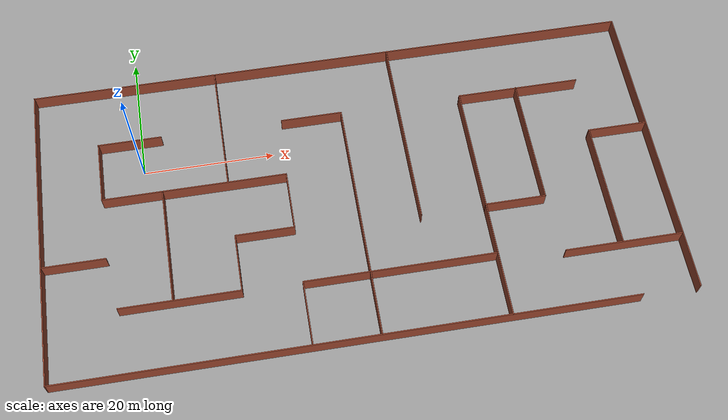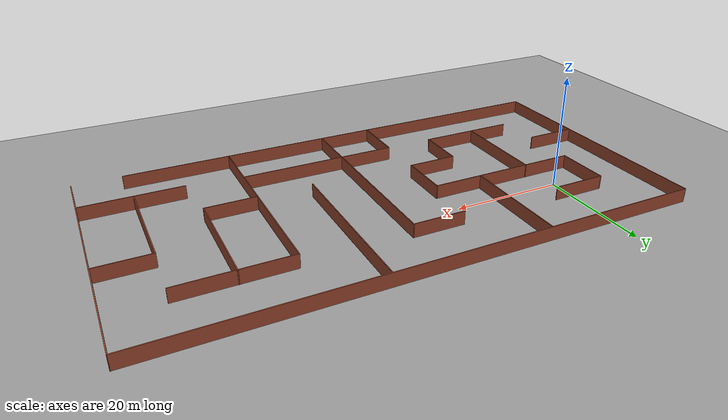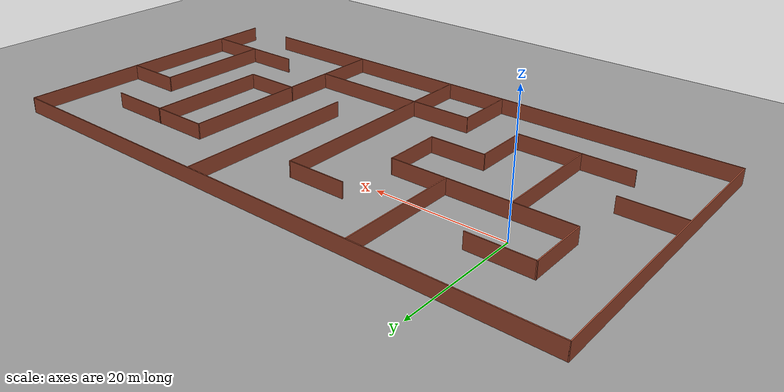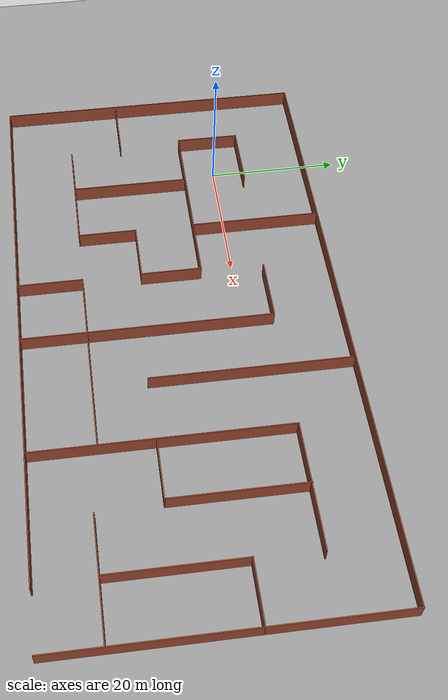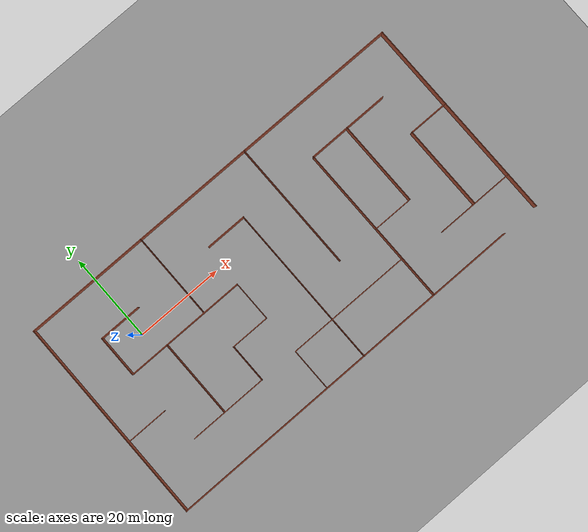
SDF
<sdf version="1.6">
 <world name="vrc_task_1">
  <light name="sun" type="directional">
   <cast_shadows>0</cast_shadows>
   <pose>0 0 100 0 -0 0</pose>
   <diffuse>0.8 0.8 0.8 1</diffuse>
   <specular>0.9 0.9 0.9 1</specular>
   <attenuation>
    <range>1000</range>
    <constant>0.9</constant>
    <linear>0.01</linear>
    <quadratic>0.001</quadratic>
   </attenuation>
   <direction>0 0 -1</direction>
  </light>
  <model name="floor_walls_1">
   <static>1</static>
   <link name="link">
    <collision name="collision">
     <geometry><plane><normal>0 0 1</normal><size>11.03 5.66</size></plane></geometry>
     <surface><friction><ode><mu>10000</mu><mu2>10000</mu2></ode></friction></surface>
    </collision>
    <visual name="visual">
     <cast_shadows>0</cast_shadows>
     <geometry><plane><normal>0 0 1</normal><size>1000 1000</size></plane></geometry>
     <material>
      <script><uri>file://media/materials/scripts/gazebo.material</uri><name>Gazebo/Grey</name></script>
     </material>
    </visual>
   </link>
  </model>
  <model name="EasyMaze">
   <pose>31 -9 0 0 -0 0</pose>
   <link name="Wall_0">
    <collision name="Wall_0_Collision">
     <geometry><box><size>93.7757 0.15 2.5</size></box></geometry>
     <pose>0 0 1.25 0 -0 0</pose>
    </collision>
    <visual name="Wall_0_Visual">
     <pose>0 0 1.25 0 -0 0</pose>
     <geometry><box><size>93.7757 0.15 2.5</size></box></geometry>
     <material>
      <script><uri>file://media/materials/scripts/gazebo.material</uri><name>Gazebo/Bricks</name></script>
      <ambient>1 1 1 1</ambient>
     </material>
    </visual>
    <pose>0.036664 23.8 0 0 -0 0</pose>
   </link>
   <link name="Wall_1">
    <collision name="Wall_1_Collision">
     <geometry><box><size>47.75 0.15 2.5</size></box></geometry>
     <pose>0 0 1.25 0 -0 0</pose>
    </collision>
    <visual name="Wall_1_Visual">
     <pose>0 0 1.25 0 -0 0</pose>
     <geometry><box><size>47.75 0.15 2.5</size></box></geometry>
     <material>
      <script><uri>file://media/materials/scripts/gazebo.material</uri><name>Gazebo/Bricks</name></script>
      <ambient>1 1 1 1</ambient>
     </material>
    </visual>
    <pose>46.8495 0 0 0 0 -1.5708</pose>
   </link>
   <link name="Wall_10">
    <collision name="Wall_10_Collision">
     <geometry><box><size>9.25 0.15 2.5</size></box></geometry>
     <pose>0 0 1.25 0 -0 0</pose>
    </collision>
    <visual name="Wall_10_Visual">
     <pose>0 0 1.25 0 -0 0</pose>
     <geometry><box><size>9.25 0.15 2.5</size></box></geometry>
     <material>
      <script><uri>file://media/materials/scripts/gazebo.material</uri><name>Gazebo/Bricks</name></script>
      <ambient>1 1 1 1</ambient>
     </material>
    </visual>
    <pose>-9.55406 -0.512055 0 0 0 -1.5708</pose>
   </link>
   <link name="Wall_11">
    <collision name="Wall_11_Collision">
     <geometry><box><size>9 0.15 2.5</size></box></geometry>
     <pose>0 0 1.25 0 -0 0</pose>
    </collision>
    <visual name="Wall_11_Visual">
     <pose>0 0 1.25 0 -0 0</pose>
     <geometry><box><size>9 0.15 2.5</size></box></geometry>
     <material>
      <script><uri>file://media/materials/scripts/gazebo.material</uri><name>Gazebo/Bricks</name></script>
      <ambient>1 1 1 1</ambient>
     </material>
    </visual>
    <pose>-13.9791 -5.06206 0 0 -0 3.14159</pose>
   </link>
   <link name="Wall_12">
    <collision name="Wall_12_Collision">
     <geometry><box><size>9 0.15 2.5</size></box></geometry>
     <pose>0 0 1.25 0 -0 0</pose>
    </collision>
    <visual name="Wall_12_Visual">
     <pose>0 0 1.25 0 -0 0</pose>
     <geometry><box><size>9 0.15 2.5</size></box></geometry>
     <material>
      <script><uri>file://media/materials/scripts/gazebo.material</uri><name>Gazebo/Bricks</name></script>
      <ambient>1 1 1 1</ambient>
     </material>
    </visual>
    <pose>-18.4041 -9.48706 0 0 0 -1.5708</pose>
   </link>
   <link name="Wall_13">
    <collision name="Wall_13_Collision">
     <geometry><box><size>18 0.15 2.5</size></box></geometry>
     <pose>0 0 1.25 0 -0 0</pose>
    </collision>
    <visual name="Wall_13_Visual">
     <pose>0 0 1.25 0 -0 0</pose>
     <geometry><box><size>18 0.15 2.5</size></box></geometry>
     <material>
      <script><uri>file://media/materials/scripts/gazebo.material</uri><name>Gazebo/Bricks</name></script>
      <ambient>1 1 1 1</ambient>
     </material>
    </visual>
    <pose>-27.3291 -13.9121 0 0 -0 3.14159</pose>
   </link>
   <link name="Wall_15">
    <collision name="Wall_15_Collision">
     <geometry><box><size>18 0.15 2.5</size></box></geometry>
     <pose>0 0 1.25 0 -0 0</pose>
    </collision>
    <visual name="Wall_15_Visual">
     <pose>0 0 1.25 0 -0 0</pose>
     <geometry><box><size>18 0.15 2.5</size></box></geometry>
     <material>
      <script><uri>file://media/materials/scripts/gazebo.material</uri><name>Gazebo/Bricks</name></script>
      <ambient>1 1 1 1</ambient>
     </material>
    </visual>
    <pose>-28.3578 -4.8854 0 0 0 -1.5708</pose>
   </link>
   <link name="Wall_17">
    <collision name="Wall_17_Collision">
     <geometry><box><size>9.5 0.15 2.5</size></box></geometry>
     <pose>0 0 1.25 0 -0 0</pose>
    </collision>
    <visual name="Wall_17_Visual">
     <pose>0 0 1.25 0 -0 0</pose>
     <geometry><box><size>9.5 0.15 2.5</size></box></geometry>
     <material>
      <script><uri>file://media/materials/scripts/gazebo.material</uri><name>Gazebo/Bricks</name></script>
      <ambient>1 1 1 1</ambient>
     </material>
    </visual>
    <pose>-42.0796 -5.74334 0 0 -0 0</pose>
   </link>
   <link name="Wall_19">
    <collision name="Wall_19_Collision">
     <geometry><box><size>9.75 0.15 2.5</size></box></geometry>
     <pose>0 0 1.25 0 -0 0</pose>
    </collision>
    <visual name="Wall_19_Visual">
     <pose>0 0 1.25 0 -0 0</pose>
     <geometry><box><size>9.75 0.15 2.5</size></box></geometry>
     <material>
      <script><uri>file://media/materials/scripts/gazebo.material</uri><name>Gazebo/Bricks</name></script>
      <ambient>1 1 1 1</ambient>
     </material>
    </visual>
    <pose>-9.55144 -18.8483 0 0 0 -1.5708</pose>
   </link>
   <link name="Wall_22">
    <collision name="Wall_22_Collision">
     <geometry><box><size>37.5 0.15 2.5</size></box></geometry>
     <pose>0 0 1.25 0 -0 0</pose>
    </collision>
    <visual name="Wall_22_Visual">
     <pose>0 0 1.25 0 -0 0</pose>
     <geometry><box><size>37.5 0.15 2.5</size></box></geometry>
     <material>
      <script><uri>file://media/materials/scripts/gazebo.material</uri><name>Gazebo/Bricks</name></script>
      <ambient>1 1 1 1</ambient>
     </material>
    </visual>
    <pose>0.352554 -5.08927 0 0 0 -1.5708</pose>
   </link>
   <link name="Wall_24">
    <collision name="Wall_24_Collision">
     <geometry><box><size>30 0.15 2.5</size></box></geometry>
     <pose>0 0 1.25 0 -0 0</pose>
    </collision>
    <visual name="Wall_24_Visual">
     <pose>0 0 1.25 0 -0 0</pose>
     <geometry><box><size>30 0.15 2.5</size></box></geometry>
     <material>
      <script><uri>file://media/materials/scripts/gazebo.material</uri><name>Gazebo/Bricks</name></script>
      <ambient>1 1 1 1</ambient>
     </material>
    </visual>
    <pose>9.35586 8.86223 0 0 0 -1.5708</pose>
   </link>
   <link name="Wall_26">
    <collision name="Wall_26_Collision">
     <geometry><box><size>28.75 0.15 2.5</size></box></geometry>
     <pose>0 0 1.25 0 -0 0</pose>
    </collision>
    <visual name="Wall_26_Visual">
     <pose>0 0 1.25 0 -0 0</pose>
     <geometry><box><size>28.75 0.15 2.5</size></box></geometry>
     <material>
      <script><uri>file://media/materials/scripts/gazebo.material</uri><name>Gazebo/Bricks</name></script>
      <ambient>1 1 1 1</ambient>
     </material>
    </visual>
    <pose>4.76053 -13.997 0 0 -0 0</pose>
   </link>
   <link name="Wall_28">
    <collision name="Wall_28_Collision">
     <geometry><box><size>19 0.15 2.5</size></box></geometry>
     <pose>0 0 1.25 0 -0 0</pose>
    </collision>
    <visual name="Wall_28_Visual">
     <pose>0 0 1.25 0 -0 0</pose>
     <geometry><box><size>19 0.15 2.5</size></box></geometry>
     <material>
      <script><uri>file://media/materials/scripts/gazebo.material</uri><name>Gazebo/Bricks</name></script>
      <ambient>1 1 1 1</ambient>
     </material>
    </visual>
    <pose>28.6447 13.603 0 0 -0 0</pose>
   </link>
   <link name="Wall_30">
    <collision name="Wall_30_Collision">
     <geometry><box><size>19.75 0.15 2.5</size></box></geometry>
     <pose>0 0 1.25 0 -0 0</pose>
    </collision>
    <visual name="Wall_30_Visual">
     <pose>0 0 1.25 0 -0 0</pose>
     <geometry><box><size>19.75 0.15 2.5</size></box></geometry>
     <material>
      <script><uri>file://media/materials/scripts/gazebo.material</uri><name>Gazebo/Bricks</name></script>
      <ambient>1 1 1 1</ambient>
     </material>
    </visual>
    <pose>28.3187 3.86897 0 0 0 -1.5708</pose>
   </link>
   <link name="Wall_31">
    <collision name="Wall_31_Collision">
     <geometry><box><size>9.25 0.15 2.5</size></box></geometry>
     <pose>0 0 1.25 0 -0 0</pose>
    </collision>
    <visual name="Wall_31_Visual">
     <pose>0 0 1.25 0 -0 0</pose>
     <geometry><box><size>9.25 0.15 2.5</size></box></geometry>
     <material>
      <script><uri>file://media/materials/scripts/gazebo.material</uri><name>Gazebo/Bricks</name></script>
      <ambient>1 1 1 1</ambient>
     </material>
    </visual>
    <pose>23.7687 -5.93103 0 0 -0 3.14159</pose>
   </link>
   <link name="Wall_33">
    <collision name="Wall_33_Collision">
     <geometry><box><size>9.25 0.15 2.5</size></box></geometry>
     <pose>0 0 1.25 0 -0 0</pose>
    </collision>
    <visual name="Wall_33_Visual">
     <pose>0 0 1.25 0 -0 0</pose>
     <geometry><box><size>9.25 0.15 2.5</size></box></geometry>
     <material>
      <script><uri>file://media/materials/scripts/gazebo.material</uri><name>Gazebo/Bricks</name></script>
      <ambient>1 1 1 1</ambient>
     </material>
    </visual>
    <pose>42.3071 4.18752 0 0 -0 3.14159</pose>
   </link>
   <link name="Wall_34">
    <collision name="Wall_34_Collision">
     <geometry><box><size>19.5 0.15 2.5</size></box></geometry>
     <pose>0 0 1.25 0 -0 0</pose>
    </collision>
    <visual name="Wall_34_Visual">
     <pose>0 0 1.25 0 -0 0</pose>
     <geometry><box><size>19.5 0.15 2.5</size></box></geometry>
     <material>
      <script><uri>file://media/materials/scripts/gazebo.material</uri><name>Gazebo/Bricks</name></script>
      <ambient>1 1 1 1</ambient>
     </material>
    </visual>
    <pose>37.7571 -5.48748 0 0 0 -1.5708</pose>
   </link>
   <link name="Wall_37">
    <collision name="Wall_37_Collision">
     <geometry><box><size>17.75 0.15 2.5</size></box></geometry>
     <pose>0 0 1.25 0 -0 0</pose>
    </collision>
    <visual name="Wall_37_Visual">
     <pose>0 0 1.25 0 -0 0</pose>
     <geometry><box><size>17.75 0.15 2.5</size></box></geometry>
     <material>
      <script><uri>file://media/materials/scripts/gazebo.material</uri><name>Gazebo/Bricks</name></script>
      <ambient>1 1 1 1</ambient>
     </material>
    </visual>
    <pose>37.9678 -15.2323 0 0 -0 0</pose>
   </link>
   <link name="Wall_39">
    <collision name="Wall_39_Collision">
     <geometry><box><size>37.5 0.15 2.5</size></box></geometry>
     <pose>0 0 1.25 0 -0 0</pose>
    </collision>
    <visual name="Wall_39_Visual">
     <pose>0 0 1.25 0 -0 0</pose>
     <geometry><box><size>37.5 0.15 2.5</size></box></geometry>
     <material>
      <script><uri>file://media/materials/scripts/gazebo.material</uri><name>Gazebo/Bricks</name></script>
      <ambient>1 1 1 1</ambient>
     </material>
    </visual>
    <pose>19.2197 -5.07204 0 0 0 -1.5708</pose>
   </link>
   <link name="Wall_41">
    <collision name="Wall_41_Collision">
     <geometry><box><size>85.25 0.15 2.5</size></box></geometry>
     <pose>0 0 1.25 0 -0 0</pose>
    </collision>
    <visual name="Wall_41_Visual">
     <pose>0 0 1.25 0 -0 0</pose>
     <geometry><box><size>85.25 0.15 2.5</size></box></geometry>
     <material>
      <script><uri>file://media/materials/scripts/gazebo.material</uri><name>Gazebo/Bricks</name></script>
      <ambient>1 1 1 1</ambient>
     </material>
    </visual>
    <pose>-4.23942 -23.8 0 0 -0 0</pose>
   </link>
   <link name="Wall_43">
    <collision name="Wall_43_Collision">
     <geometry><box><size>47.75 0.15 2.5</size></box></geometry>
     <pose>0 0 1.25 0 -0 0</pose>
    </collision>
    <visual name="Wall_43_Visual">
     <pose>0 0 1.25 0 -0 0</pose>
     <geometry><box><size>47.75 0.15 2.5</size></box></geometry>
     <material>
      <script><uri>file://media/materials/scripts/gazebo.material</uri><name>Gazebo/Bricks</name></script>
      <ambient>1 1 1 1</ambient>
     </material>
    </visual>
    <pose>-46.8571 0 0 0 0 -1.5708</pose>
   </link>
   <link name="Wall_45">
    <collision name="Wall_45_Collision">
     <geometry><box><size>9.5 0.15 2.5</size></box></geometry>
     <pose>0 0 1.25 0 -0 0</pose>
    </collision>
    <visual name="Wall_45_Visual">
     <pose>0 0 1.25 0 -0 0</pose>
     <geometry><box><size>9.5 0.15 2.5</size></box></geometry>
     <material>
      <script><uri>file://media/materials/scripts/gazebo.material</uri><name>Gazebo/Bricks</name></script>
      <ambient>1 1 1 1</ambient>
     </material>
    </visual>
    <pose>-4.32245 13.5857 0 0 -0 0</pose>
   </link>
   <link name="Wall_5">
    <collision name="Wall_5_Collision">
     <geometry><box><size>19.75 0.15 2.5</size></box></geometry>
     <pose>0 0 1.25 0 -0 0</pose>
    </collision>
    <visual name="Wall_5_Visual">
     <pose>0 0 1.25 0 -0 0</pose>
     <geometry><box><size>19.75 0.15 2.5</size></box></geometry>
     <material>
      <script><uri>file://media/materials/scripts/gazebo.material</uri><name>Gazebo/Bricks</name></script>
      <ambient>1 1 1 1</ambient>
     </material>
    </visual>
    <pose>-18.4518 13.99 0 0 0 -1.5708</pose>
   </link>
   <link name="Wall_7">
    <collision name="Wall_7_Collision">
     <geometry><box><size>9.75 0.15 2.5</size></box></geometry>
     <pose>0 0 1.25 0 -0 0</pose>
    </collision>
    <visual name="Wall_7_Visual">
     <pose>0 0 1.25 0 -0 0</pose>
     <geometry><box><size>9.75 0.15 2.5</size></box></geometry>
     <material>
      <script><uri>file://media/materials/scripts/gazebo.material</uri><name>Gazebo/Bricks</name></script>
      <ambient>1 1 1 1</ambient>
     </material>
    </visual>
    <pose>-32.6041 13.6379 0 0 -0 3.14159</pose>
   </link>
   <link name="Wall_8">
    <collision name="Wall_8_Collision">
     <geometry><box><size>9.75 0.15 2.5</size></box></geometry>
     <pose>0 0 1.25 0 -0 0</pose>
    </collision>
    <visual name="Wall_8_Visual">
     <pose>0 0 1.25 0 -0 0</pose>
     <geometry><box><size>9.75 0.15 2.5</size></box></geometry>
     <material>
      <script><uri>file://media/materials/scripts/gazebo.material</uri><name>Gazebo/Bricks</name></script>
      <ambient>1 1 1 1</ambient>
     </material>
    </visual>
    <pose>-37.4041 8.83794 0 0 0 -1.5708</pose>
   </link>
   <link name="Wall_9">
    <collision name="Wall_9_Collision">
     <geometry><box><size>28 0.15 2.5</size></box></geometry>
     <pose>0 0 1.25 0 -0 0</pose>
    </collision>
    <visual name="Wall_9_Visual">
     <pose>0 0 1.25 0 -0 0</pose>
     <geometry><box><size>28 0.15 2.5</size></box></geometry>
     <material>
      <script><uri>file://media/materials/scripts/gazebo.material</uri><name>Gazebo/Bricks</name></script>
      <ambient>1 1 1 1</ambient>
     </material>
    </visual>
    <pose>-23.4791 4.03794 0 0 -0 0</pose>
   </link>
   <static>1</static>
  </model>
  <plugin name="ardupilot_sitl_gazebo_plugin" filename="libardupilot_sitl_gazebo_plugin_rover.so">
   <UAV_MODEL>rover</UAV_MODEL>
  </plugin>
  <gravity>0 0 -9.8</gravity>
  <magnetic_field>6e-06 2.3e-05 -4.2e-05</magnetic_field>
  <atmosphere type="adiabatic"/>
  <physics name="default_physics" default="0" type="ode">
   <max_step_size>0.001</max_step_size>
   <real_time_factor>1</real_time_factor>
   <real_time_update_rate>1000</real_time_update_rate>
  </physics>
  <scene><ambient>0.4 0.4 0.4 1</ambient><background>0.7 0.7 0.7 1</background><shadows>1</shadows></scene>
  <spherical_coordinates>
   <surface_model>EARTH_WGS84</surface_model>
   <latitude_deg>0</latitude_deg>
   <longitude_deg>0</longitude_deg>
   <elevation>0</elevation>
   <heading_deg>0</heading_deg>
  </spherical_coordinates>
 </world>
</sdf>
